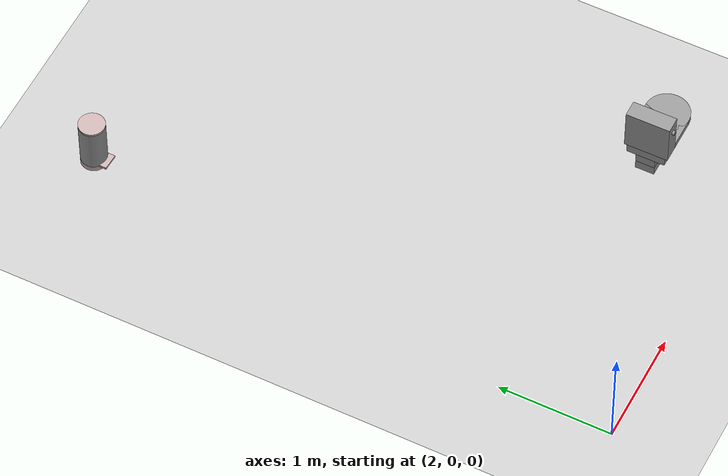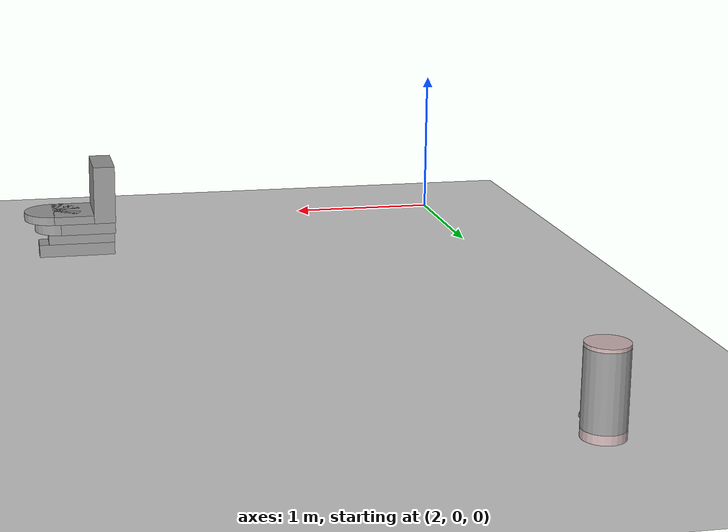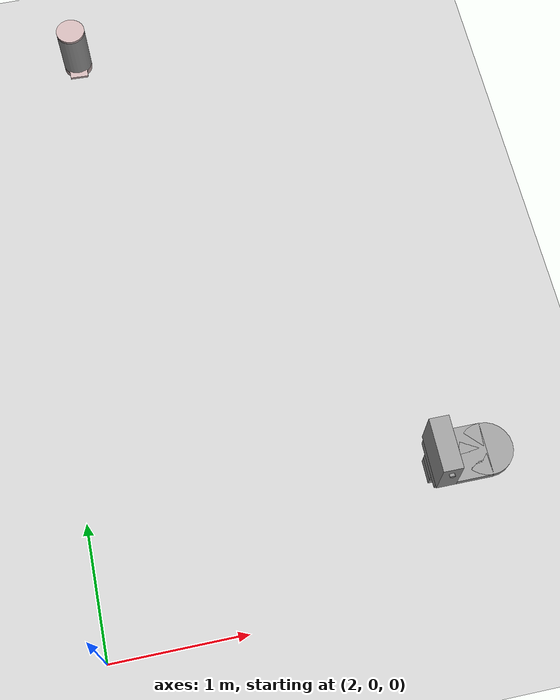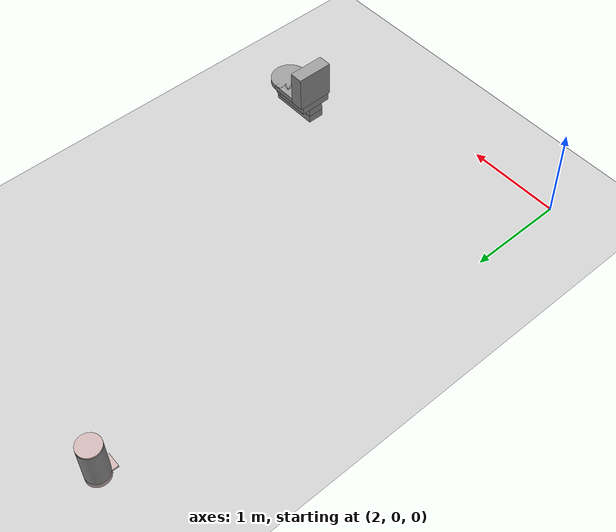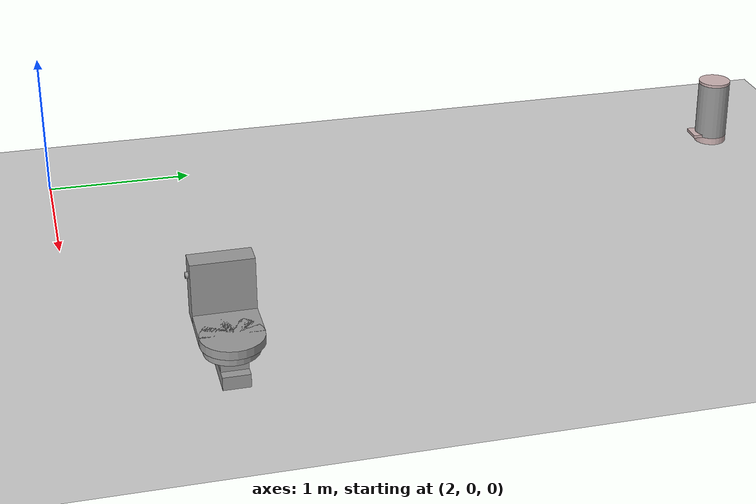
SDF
<sdf version="1.6">
 <world name="default">
  <model name="ground_plane">
   <static>1</static>
   <link name="link">
    <collision name="collision">
     <geometry><plane><normal>0 0 1</normal><size>100 100</size></plane></geometry>
     <surface><friction><ode><mu>100</mu><mu2>50</mu2></ode></friction></surface>
    </collision>
    <visual name="visual">
     <cast_shadows>0</cast_shadows>
     <geometry><plane><normal>0 0 1</normal><size>100 100</size></plane></geometry>
     <material>
      <script><uri>file://media/materials/scripts/gazebo.material</uri><name>Gazebo/Grey</name></script>
     </material>
    </visual>
   </link>
  </model>
  <model name="trashcan">
   <link name="link_0">
    <pose>-0.0312 0 -0.1775 0 -0 0</pose>
    <visual name="visual">
     <geometry><cylinder><radius>0.115</radius><length>0.05</length></cylinder></geometry>
     <material>
      <lighting>1</lighting>
      <script><uri>file://media/materials/scripts/gazebo.material</uri><name>Gazebo/Grey</name></script>
      <ambient>0.3 0.3 0.3 1</ambient>
      <diffuse>0.8 0.7 0.7 1</diffuse>
      <specular>0.01 0.01 0.21 1</specular>
      <emissive>0 0 0 1</emissive>
      <shader type="vertex"><normal_map>__default__</normal_map></shader>
     </material>
    </visual>
    <collision name="collision">
     <geometry><cylinder><radius>0.115</radius><length>0.05</length></cylinder></geometry>
     <surface>
      <friction>
       <ode><mu>1</mu><mu2>1</mu2><fdir1>0 0 0</fdir1><slip1>0</slip1><slip2>0</slip2></ode>
       <torsional>
        <coefficient>1</coefficient>
        <patch_radius>0</patch_radius>
        <surface_radius>0</surface_radius>
        <use_patch_radius>1</use_patch_radius>
        <ode><slip>0</slip></ode>
       </torsional>
      </friction>
      <bounce><restitution_coefficient>0</restitution_coefficient><threshold>1e+06</threshold></bounce>
      <contact>
       <collide_without_contact>0</collide_without_contact>
       <collide_without_contact_bitmask>1</collide_without_contact_bitmask>
       <collide_bitmask>1</collide_bitmask>
       <ode>
        <soft_cfm>0</soft_cfm>
        <soft_erp>0.2</soft_erp>
        <kp>1e+13</kp>
        <kd>1</kd>
        <max_vel>0.01</max_vel>
        <min_depth>0</min_depth>
       </ode>
       <bullet>
        <split_impulse>1</split_impulse>
        <split_impulse_penetration_threshold>-0.01</split_impulse_penetration_threshold>
        <soft_cfm>0</soft_cfm>
        <soft_erp>0.2</soft_erp>
        <kp>1e+13</kp>
        <kd>1</kd>
       </bullet>
      </contact>
     </surface>
    </collision>
    <inertial>
     <inertia><ixx>1</ixx><ixy>0</ixy><ixz>0</ixz><iyy>1</iyy><iyz>0</iyz><izz>1</izz></inertia>
     <mass>1</mass>
    </inertial>
   </link>
   <link name="link_0_clone">
    <pose>-0.0312 0 0.2675 0 -0 0</pose>
    <visual name="visual">
     <geometry><cylinder><radius>0.115</radius><length>0.02</length></cylinder></geometry>
     <material>
      <lighting>1</lighting>
      <script><uri>file://media/materials/scripts/gazebo.material</uri><name>Gazebo/Grey</name></script>
      <ambient>0.3 0.3 0.3 1</ambient>
      <diffuse>0.8 0.7 0.7 1</diffuse>
      <specular>0.01 0.01 0.21 1</specular>
      <emissive>0 0 0 1</emissive>
      <shader type="vertex"><normal_map>__default__</normal_map></shader>
     </material>
    </visual>
    <collision name="collision">
     <geometry><cylinder><radius>0.115</radius><length>0.02</length></cylinder></geometry>
     <surface>
      <friction>
       <ode><mu>1</mu><mu2>1</mu2><fdir1>0 0 0</fdir1><slip1>0</slip1><slip2>0</slip2></ode>
       <torsional>
        <coefficient>1</coefficient>
        <patch_radius>0</patch_radius>
        <surface_radius>0</surface_radius>
        <use_patch_radius>1</use_patch_radius>
        <ode><slip>0</slip></ode>
       </torsional>
      </friction>
      <bounce><restitution_coefficient>0</restitution_coefficient><threshold>1e+06</threshold></bounce>
      <contact>
       <collide_without_contact>0</collide_without_contact>
       <collide_without_contact_bitmask>1</collide_without_contact_bitmask>
       <collide_bitmask>1</collide_bitmask>
       <ode>
        <soft_cfm>0</soft_cfm>
        <soft_erp>0.2</soft_erp>
        <kp>1e+13</kp>
        <kd>1</kd>
        <max_vel>0.01</max_vel>
        <min_depth>0</min_depth>
       </ode>
       <bullet>
        <split_impulse>1</split_impulse>
        <split_impulse_penetration_threshold>-0.01</split_impulse_penetration_threshold>
        <soft_cfm>0</soft_cfm>
        <soft_erp>0.2</soft_erp>
        <kp>1e+13</kp>
        <kd>1</kd>
       </bullet>
      </contact>
     </surface>
    </collision>
    <inertial>
     <inertia><ixx>1</ixx><ixy>0</ixy><ixz>0</ixz><iyy>1</iyy><iyz>0</iyz><izz>1</izz></inertia>
     <mass>1</mass>
    </inertial>
   </link>
   <link name="link_1">
    <pose>-0.0312 0 0.0525 0 -0 0</pose>
    <visual name="visual">
     <geometry><cylinder><radius>0.115</radius><length>0.41</length></cylinder></geometry>
     <material>
      <lighting>1</lighting>
      <script><uri>file://media/materials/scripts/gazebo.material</uri><name>Gazebo/Grey</name></script>
      <ambient>0.3 0.3 0.3 1</ambient>
      <diffuse>0.7 0.7 0.7 1</diffuse>
      <specular>0.01 1 0.01 1</specular>
      <emissive>0 0 0 1</emissive>
      <shader type="vertex"><normal_map>__default__</normal_map></shader>
     </material>
    </visual>
    <collision name="collision">
     <geometry><cylinder><radius>0.115</radius><length>0.41</length></cylinder></geometry>
     <surface>
      <friction>
       <ode><mu>1</mu><mu2>1</mu2><fdir1>0 0 0</fdir1><slip1>0</slip1><slip2>0</slip2></ode>
       <torsional>
        <coefficient>1</coefficient>
        <patch_radius>0</patch_radius>
        <surface_radius>0</surface_radius>
        <use_patch_radius>1</use_patch_radius>
        <ode><slip>0</slip></ode>
       </torsional>
      </friction>
      <bounce><restitution_coefficient>0</restitution_coefficient><threshold>1e+06</threshold></bounce>
      <contact>
       <collide_without_contact>0</collide_without_contact>
       <collide_without_contact_bitmask>1</collide_without_contact_bitmask>
       <collide_bitmask>1</collide_bitmask>
       <ode>
        <soft_cfm>0</soft_cfm>
        <soft_erp>0.2</soft_erp>
        <kp>1e+13</kp>
        <kd>1</kd>
        <max_vel>0.01</max_vel>
        <min_depth>0</min_depth>
       </ode>
       <bullet>
        <split_impulse>1</split_impulse>
        <split_impulse_penetration_threshold>-0.01</split_impulse_penetration_threshold>
        <soft_cfm>0</soft_cfm>
        <soft_erp>0.2</soft_erp>
        <kp>1e+13</kp>
        <kd>1</kd>
       </bullet>
      </contact>
     </surface>
    </collision>
    <inertial>
     <inertia><ixx>1</ixx><ixy>0</ixy><ixz>0</ixz><iyy>1</iyy><iyz>0</iyz><izz>1</izz></inertia>
     <mass>1</mass>
    </inertial>
   </link>
   <link name="link_2">
    <pose>0.093602 0 -0.1425 0 -0 0</pose>
    <visual name="visual">
     <geometry><box><size>0.065 0.145 0.02</size></box></geometry>
     <material>
      <lighting>1</lighting>
      <script><uri>file://media/materials/scripts/gazebo.material</uri><name>Gazebo/Grey</name></script>
      <ambient>0.3 0.3 0.3 1</ambient>
      <diffuse>0.8 0.7 0.7 1</diffuse>
      <specular>0.01 0.01 0.21 1</specular>
      <emissive>0 0 0 1</emissive>
      <shader type="vertex"><normal_map>__default__</normal_map></shader>
     </material>
    </visual>
    <collision name="collision">
     <geometry><box><size>0.065 0.145 0.02</size></box></geometry>
     <surface>
      <friction>
       <ode><mu>1</mu><mu2>1</mu2><fdir1>0 0 0</fdir1><slip1>0</slip1><slip2>0</slip2></ode>
       <torsional>
        <coefficient>1</coefficient>
        <patch_radius>0</patch_radius>
        <surface_radius>0</surface_radius>
        <use_patch_radius>1</use_patch_radius>
        <ode><slip>0</slip></ode>
       </torsional>
      </friction>
      <bounce><restitution_coefficient>0</restitution_coefficient><threshold>1e+06</threshold></bounce>
      <contact>
       <collide_without_contact>0</collide_without_contact>
       <collide_without_contact_bitmask>1</collide_without_contact_bitmask>
       <collide_bitmask>1</collide_bitmask>
       <ode>
        <soft_cfm>0</soft_cfm>
        <soft_erp>0.2</soft_erp>
        <kp>1e+13</kp>
        <kd>1</kd>
        <max_vel>0.01</max_vel>
        <min_depth>0</min_depth>
       </ode>
       <bullet>
        <split_impulse>1</split_impulse>
        <split_impulse_penetration_threshold>-0.01</split_impulse_penetration_threshold>
        <soft_cfm>0</soft_cfm>
        <soft_erp>0.2</soft_erp>
        <kp>1e+13</kp>
        <kd>1</kd>
       </bullet>
      </contact>
     </surface>
    </collision>
    <inertial>
     <inertia><ixx>1</ixx><ixy>0</ixy><ixz>0</ixz><iyy>1</iyy><iyz>0</iyz><izz>1</izz></inertia>
     <mass>1</mass>
    </inertial>
   </link>
   <joint name="link_0_JOINT_0" type="fixed">
    <parent>link_0</parent>
    <child>link_1</child>
    <physics>
     <ode><limit><cfm>0</cfm><erp>0.2</erp></limit><suspension><cfm>0</cfm><erp>0.2</erp></suspension></ode>
    </physics>
   </joint>
   <joint name="link_0_JOINT_2" type="fixed">
    <parent>link_0</parent>
    <child>link_2</child>
    <physics>
     <ode><limit><cfm>0</cfm><erp>0.2</erp></limit><suspension><cfm>0</cfm><erp>0.2</erp></suspension></ode>
    </physics>
   </joint>
   <joint name="link_1_JOINT_1" type="fixed">
    <parent>link_1</parent>
    <child>link_0_clone</child>
    <physics>
     <ode><limit><cfm>0</cfm><erp>0.2</erp></limit><suspension><cfm>0</cfm><erp>0.2</erp></suspension></ode>
    </physics>
   </joint>
   <static>0</static>
   <pose>2.4949 4.90328 0.282519 -4.2e-05 -7e-06 -1.6074</pose>
  </model>
  <model name="toilet_2">
   <link name="link_3">
    <pose>2.86172 0.097134 0.225194 0 -0 0</pose>
    <visual name="visual">
     <geometry><box><size>0.17 0.515 0.085</size></box></geometry>
     <material>
      <lighting>1</lighting>
      <script><uri>file://media/materials/scripts/gazebo.material</uri><name>Gazebo/Grey</name></script>
      <ambient>0.3 0.3 0.3 1</ambient>
      <diffuse>0.7 0.7 0.7 1</diffuse>
      <specular>0.01 1 1 1</specular>
      <emissive>0 0 0 1</emissive>
      <shader type="vertex"><normal_map>__default__</normal_map></shader>
     </material>
    </visual>
    <collision name="collision">
     <geometry><box><size>0.17 0.515 0.085</size></box></geometry>
     <surface>
      <friction>
       <ode><mu>1</mu><mu2>1</mu2><fdir1>0 0 0</fdir1><slip1>0</slip1><slip2>0</slip2></ode>
       <torsional>
        <coefficient>1</coefficient>
        <patch_radius>0</patch_radius>
        <surface_radius>0</surface_radius>
        <use_patch_radius>1</use_patch_radius>
        <ode><slip>0</slip></ode>
       </torsional>
      </friction>
      <bounce><restitution_coefficient>0</restitution_coefficient><threshold>1e+06</threshold></bounce>
      <contact>
       <collide_without_contact>0</collide_without_contact>
       <collide_without_contact_bitmask>1</collide_without_contact_bitmask>
       <collide_bitmask>1</collide_bitmask>
       <ode>
        <soft_cfm>0</soft_cfm>
        <soft_erp>0.2</soft_erp>
        <kp>1e+13</kp>
        <kd>1</kd>
        <max_vel>0.01</max_vel>
        <min_depth>0</min_depth>
       </ode>
       <bullet>
        <split_impulse>1</split_impulse>
        <split_impulse_penetration_threshold>-0.01</split_impulse_penetration_threshold>
        <soft_cfm>0</soft_cfm>
        <soft_erp>0.2</soft_erp>
        <kp>1e+13</kp>
        <kd>1</kd>
       </bullet>
      </contact>
     </surface>
    </collision>
    <inertial>
     <inertia><ixx>1</ixx><ixy>0</ixy><ixz>0</ixz><iyy>1</iyy><iyz>0</iyz><izz>1</izz></inertia>
     <mass>1</mass>
    </inertial>
   </link>
   <link name="link_3_clone">
    <pose>2.86172 0.064634 0.310194 0 -0 0</pose>
    <visual name="visual">
     <geometry><box><size>0.17 0.45 0.085</size></box></geometry>
     <material>
      <lighting>1</lighting>
      <script><uri>file://media/materials/scripts/gazebo.material</uri><name>Gazebo/Grey</name></script>
      <ambient>0.3 0.3 0.3 1</ambient>
      <diffuse>0.7 0.7 0.7 1</diffuse>
      <specular>0.01 1 1 1</specular>
      <emissive>0 0 0 1</emissive>
      <shader type="vertex"><normal_map>__default__</normal_map></shader>
     </material>
    </visual>
    <collision name="collision">
     <geometry><box><size>0.17 0.45 0.085</size></box></geometry>
     <surface>
      <friction>
       <ode><mu>1</mu><mu2>1</mu2><fdir1>0 0 0</fdir1><slip1>0</slip1><slip2>0</slip2></ode>
       <torsional>
        <coefficient>1</coefficient>
        <patch_radius>0</patch_radius>
        <surface_radius>0</surface_radius>
        <use_patch_radius>1</use_patch_radius>
        <ode><slip>0</slip></ode>
       </torsional>
      </friction>
      <bounce><restitution_coefficient>0</restitution_coefficient><threshold>1e+06</threshold></bounce>
      <contact>
       <collide_without_contact>0</collide_without_contact>
       <collide_without_contact_bitmask>1</collide_without_contact_bitmask>
       <collide_bitmask>1</collide_bitmask>
       <ode>
        <soft_cfm>0</soft_cfm>
        <soft_erp>0.2</soft_erp>
        <kp>1e+13</kp>
        <kd>1</kd>
        <max_vel>0.01</max_vel>
        <min_depth>0</min_depth>
       </ode>
       <bullet>
        <split_impulse>1</split_impulse>
        <split_impulse_penetration_threshold>-0.01</split_impulse_penetration_threshold>
        <soft_cfm>0</soft_cfm>
        <soft_erp>0.2</soft_erp>
        <kp>1e+13</kp>
        <kd>1</kd>
       </bullet>
      </contact>
     </surface>
    </collision>
    <inertial>
     <inertia><ixx>1</ixx><ixy>0</ixy><ixz>0</ixz><iyy>1</iyy><iyz>0</iyz><izz>1</izz></inertia>
     <mass>1</mass>
    </inertial>
   </link>
   <link name="link_3_clone_0">
    <pose>2.86172 -0.087866 0.627694 0 -0 0</pose>
    <visual name="visual">
     <geometry><box><size>0.39 0.145 0.39</size></box></geometry>
     <material>
      <lighting>1</lighting>
      <script><uri>file://media/materials/scripts/gazebo.material</uri><name>Gazebo/Grey</name></script>
      <ambient>0.3 0.3 0.3 1</ambient>
      <diffuse>0.7 0.7 0.7 1</diffuse>
      <specular>0.01 1 1 1</specular>
      <emissive>0 0 0 1</emissive>
      <shader type="vertex"><normal_map>__default__</normal_map></shader>
     </material>
    </visual>
    <collision name="collision">
     <geometry><box><size>0.39 0.145 0.39</size></box></geometry>
     <surface>
      <friction>
       <ode><mu>1</mu><mu2>1</mu2><fdir1>0 0 0</fdir1><slip1>0</slip1><slip2>0</slip2></ode>
       <torsional>
        <coefficient>1</coefficient>
        <patch_radius>0</patch_radius>
        <surface_radius>0</surface_radius>
        <use_patch_radius>1</use_patch_radius>
        <ode><slip>0</slip></ode>
       </torsional>
      </friction>
      <bounce><restitution_coefficient>0</restitution_coefficient><threshold>1e+06</threshold></bounce>
      <contact>
       <collide_without_contact>0</collide_without_contact>
       <collide_without_contact_bitmask>1</collide_without_contact_bitmask>
       <collide_bitmask>1</collide_bitmask>
       <ode>
        <soft_cfm>0</soft_cfm>
        <soft_erp>0.2</soft_erp>
        <kp>1e+13</kp>
        <kd>1</kd>
        <max_vel>0.01</max_vel>
        <min_depth>0</min_depth>
       </ode>
       <bullet>
        <split_impulse>1</split_impulse>
        <split_impulse_penetration_threshold>-0.01</split_impulse_penetration_threshold>
        <soft_cfm>0</soft_cfm>
        <soft_erp>0.2</soft_erp>
        <kp>1e+13</kp>
        <kd>1</kd>
       </bullet>
      </contact>
     </surface>
    </collision>
    <inertial>
     <inertia><ixx>1</ixx><ixy>0</ixy><ixz>0</ixz><iyy>1</iyy><iyz>0</iyz><izz>1</izz></inertia>
     <mass>1</mass>
    </inertial>
   </link>
   <link name="link_4">
    <pose>2.86172 0.024634 0.392694 0 -0 0</pose>
    <visual name="visual">
     <geometry><box><size>0.34 0.37 0.08</size></box></geometry>
     <material>
      <lighting>1</lighting>
      <script><uri>file://media/materials/scripts/gazebo.material</uri><name>Gazebo/Grey</name></script>
      <ambient>0.3 0.3 0.3 1</ambient>
      <diffuse>0.7 0.7 0.7 1</diffuse>
      <specular>0.01 1 1 1</specular>
      <emissive>0 0 0 1</emissive>
      <shader type="vertex"><normal_map>__default__</normal_map></shader>
     </material>
    </visual>
    <collision name="collision">
     <geometry><box><size>0.34 0.37 0.08</size></box></geometry>
     <surface>
      <friction>
       <ode><mu>1</mu><mu2>1</mu2><fdir1>0 0 0</fdir1><slip1>0</slip1><slip2>0</slip2></ode>
       <torsional>
        <coefficient>1</coefficient>
        <patch_radius>0</patch_radius>
        <surface_radius>0</surface_radius>
        <use_patch_radius>1</use_patch_radius>
        <ode><slip>0</slip></ode>
       </torsional>
      </friction>
      <bounce><restitution_coefficient>0</restitution_coefficient><threshold>1e+06</threshold></bounce>
      <contact>
       <collide_without_contact>0</collide_without_contact>
       <collide_without_contact_bitmask>1</collide_without_contact_bitmask>
       <collide_bitmask>1</collide_bitmask>
       <ode>
        <soft_cfm>0</soft_cfm>
        <soft_erp>0.2</soft_erp>
        <kp>1e+13</kp>
        <kd>1</kd>
        <max_vel>0.01</max_vel>
        <min_depth>0</min_depth>
       </ode>
       <bullet>
        <split_impulse>1</split_impulse>
        <split_impulse_penetration_threshold>-0.01</split_impulse_penetration_threshold>
        <soft_cfm>0</soft_cfm>
        <soft_erp>0.2</soft_erp>
        <kp>1e+13</kp>
        <kd>1</kd>
       </bullet>
      </contact>
     </surface>
    </collision>
    <inertial>
     <inertia><ixx>1</ixx><ixy>0</ixy><ixz>0</ixz><iyy>1</iyy><iyz>0</iyz><izz>1</izz></inertia>
     <mass>1</mass>
    </inertial>
   </link>
   <link name="link_6">
    <pose>2.86172 0.209635 0.392694 0 -0 0</pose>
    <visual name="visual">
     <geometry><cylinder><radius>0.17</radius><length>0.08</length></cylinder></geometry>
     <material>
      <lighting>1</lighting>
      <script><uri>file://media/materials/scripts/gazebo.material</uri><name>Gazebo/Grey</name></script>
      <ambient>0.3 0.3 0.3 1</ambient>
      <diffuse>0.7 0.7 0.7 1</diffuse>
      <specular>0.01 1 1 1</specular>
      <emissive>0 0 0 1</emissive>
      <shader type="vertex"><normal_map>__default__</normal_map></shader>
     </material>
    </visual>
    <collision name="collision">
     <geometry><cylinder><radius>0.17</radius><length>0.08</length></cylinder></geometry>
     <surface>
      <friction>
       <ode><mu>1</mu><mu2>1</mu2><fdir1>0 0 0</fdir1><slip1>0</slip1><slip2>0</slip2></ode>
       <torsional>
        <coefficient>1</coefficient>
        <patch_radius>0</patch_radius>
        <surface_radius>0</surface_radius>
        <use_patch_radius>1</use_patch_radius>
        <ode><slip>0</slip></ode>
       </torsional>
      </friction>
      <bounce><restitution_coefficient>0</restitution_coefficient><threshold>1e+06</threshold></bounce>
      <contact>
       <collide_without_contact>0</collide_without_contact>
       <collide_without_contact_bitmask>1</collide_without_contact_bitmask>
       <collide_bitmask>1</collide_bitmask>
       <ode>
        <soft_cfm>0</soft_cfm>
        <soft_erp>0.2</soft_erp>
        <kp>1e+13</kp>
        <kd>1</kd>
        <max_vel>0.01</max_vel>
        <min_depth>0</min_depth>
       </ode>
       <bullet>
        <split_impulse>1</split_impulse>
        <split_impulse_penetration_threshold>-0.01</split_impulse_penetration_threshold>
        <soft_cfm>0</soft_cfm>
        <soft_erp>0.2</soft_erp>
        <kp>1e+13</kp>
        <kd>1</kd>
       </bullet>
      </contact>
     </surface>
    </collision>
    <inertial>
     <inertia><ixx>1</ixx><ixy>0</ixy><ixz>0</ixz><iyy>1</iyy><iyz>0</iyz><izz>1</izz></inertia>
     <mass>1</mass>
    </inertial>
   </link>
   <link name="link_7">
    <pose>2.86172 0.119634 0.460194 0 -0 0</pose>
    <visual name="visual">
     <geometry><box><size>0.39 0.27 0.055</size></box></geometry>
     <material>
      <lighting>1</lighting>
      <script><uri>file://media/materials/scripts/gazebo.material</uri><name>Gazebo/Grey</name></script>
      <ambient>0.3 0.3 0.3 1</ambient>
      <diffuse>0.7 0.7 0.7 1</diffuse>
      <specular>0.01 1 1 1</specular>
      <emissive>0 0 0 1</emissive>
      <shader type="vertex"><normal_map>__default__</normal_map></shader>
     </material>
    </visual>
    <collision name="collision">
     <geometry><box><size>0.39 0.27 0.055</size></box></geometry>
     <surface>
      <friction>
       <ode><mu>1</mu><mu2>1</mu2><fdir1>0 0 0</fdir1><slip1>0</slip1><slip2>0</slip2></ode>
       <torsional>
        <coefficient>1</coefficient>
        <patch_radius>0</patch_radius>
        <surface_radius>0</surface_radius>
        <use_patch_radius>1</use_patch_radius>
        <ode><slip>0</slip></ode>
       </torsional>
      </friction>
      <bounce><restitution_coefficient>0</restitution_coefficient><threshold>1e+06</threshold></bounce>
      <contact>
       <collide_without_contact>0</collide_without_contact>
       <collide_without_contact_bitmask>1</collide_without_contact_bitmask>
       <collide_bitmask>1</collide_bitmask>
       <ode>
        <soft_cfm>0</soft_cfm>
        <soft_erp>0.2</soft_erp>
        <kp>1e+13</kp>
        <kd>1</kd>
        <max_vel>0.01</max_vel>
        <min_depth>0</min_depth>
       </ode>
       <bullet>
        <split_impulse>1</split_impulse>
        <split_impulse_penetration_threshold>-0.01</split_impulse_penetration_threshold>
        <soft_cfm>0</soft_cfm>
        <soft_erp>0.2</soft_erp>
        <kp>1e+13</kp>
        <kd>1</kd>
       </bullet>
      </contact>
     </surface>
    </collision>
    <inertial>
     <inertia><ixx>1</ixx><ixy>0</ixy><ixz>0</ixz><iyy>1</iyy><iyz>0</iyz><izz>1</izz></inertia>
     <mass>1</mass>
    </inertial>
   </link>
   <link name="link_8">
    <pose>2.86172 0.254634 0.460194 0 -0 0</pose>
    <visual name="visual">
     <geometry><cylinder><radius>0.195</radius><length>0.055</length></cylinder></geometry>
     <material>
      <lighting>1</lighting>
      <script><uri>file://media/materials/scripts/gazebo.material</uri><name>Gazebo/Grey</name></script>
      <ambient>0.3 0.3 0.3 1</ambient>
      <diffuse>0.7 0.7 0.7 1</diffuse>
      <specular>0.01 1 1 1</specular>
      <emissive>0 0 0 1</emissive>
      <shader type="vertex"><normal_map>__default__</normal_map></shader>
     </material>
    </visual>
    <collision name="collision">
     <geometry><cylinder><radius>0.195</radius><length>0.055</length></cylinder></geometry>
     <surface>
      <friction>
       <ode><mu>1</mu><mu2>1</mu2><fdir1>0 0 0</fdir1><slip1>0</slip1><slip2>0</slip2></ode>
       <torsional>
        <coefficient>1</coefficient>
        <patch_radius>0</patch_radius>
        <surface_radius>0</surface_radius>
        <use_patch_radius>1</use_patch_radius>
        <ode><slip>0</slip></ode>
       </torsional>
      </friction>
      <bounce><restitution_coefficient>0</restitution_coefficient><threshold>1e+06</threshold></bounce>
      <contact>
       <collide_without_contact>0</collide_without_contact>
       <collide_without_contact_bitmask>1</collide_without_contact_bitmask>
       <collide_bitmask>1</collide_bitmask>
       <ode>
        <soft_cfm>0</soft_cfm>
        <soft_erp>0.2</soft_erp>
        <kp>1e+13</kp>
        <kd>1</kd>
        <max_vel>0.01</max_vel>
        <min_depth>0</min_depth>
       </ode>
       <bullet>
        <split_impulse>1</split_impulse>
        <split_impulse_penetration_threshold>-0.01</split_impulse_penetration_threshold>
        <soft_cfm>0</soft_cfm>
        <soft_erp>0.2</soft_erp>
        <kp>1e+13</kp>
        <kd>1</kd>
       </bullet>
      </contact>
     </surface>
    </collision>
    <inertial>
     <inertia><ixx>1</ixx><ixy>0</ixy><ixz>0</ixz><iyy>1</iyy><iyz>0</iyz><izz>1</izz></inertia>
     <mass>1</mass>
    </inertial>
   </link>
   <link name="link_9">
    <pose>3.06673 -0.087866 0.72514 0 1.5707 0</pose>
    <visual name="visual">
     <geometry><cylinder><radius>0.02</radius><length>0.02</length></cylinder></geometry>
     <material>
      <lighting>1</lighting>
      <script><uri>file://media/materials/scripts/gazebo.material</uri><name>Gazebo/Grey</name></script>
      <ambient>0.3 0.3 0.3 1</ambient>
      <diffuse>0.7 0.7 0.7 1</diffuse>
      <specular>0.01 0.01 0.01 1</specular>
      <emissive>0 0 0 1</emissive>
      <shader type="vertex"><normal_map>__default__</normal_map></shader>
     </material>
    </visual>
    <collision name="collision">
     <geometry><cylinder><radius>0.02</radius><length>0.02</length></cylinder></geometry>
     <surface>
      <friction>
       <ode><mu>1</mu><mu2>1</mu2><fdir1>0 0 0</fdir1><slip1>0</slip1><slip2>0</slip2></ode>
       <torsional>
        <coefficient>1</coefficient>
        <patch_radius>0</patch_radius>
        <surface_radius>0</surface_radius>
        <use_patch_radius>1</use_patch_radius>
        <ode><slip>0</slip></ode>
       </torsional>
      </friction>
      <bounce><restitution_coefficient>0</restitution_coefficient><threshold>1e+06</threshold></bounce>
      <contact>
       <collide_without_contact>0</collide_without_contact>
       <collide_without_contact_bitmask>1</collide_without_contact_bitmask>
       <collide_bitmask>1</collide_bitmask>
       <ode>
        <soft_cfm>0</soft_cfm>
        <soft_erp>0.2</soft_erp>
        <kp>1e+13</kp>
        <kd>1</kd>
        <max_vel>0.01</max_vel>
        <min_depth>0</min_depth>
       </ode>
       <bullet>
        <split_impulse>1</split_impulse>
        <split_impulse_penetration_threshold>-0.01</split_impulse_penetration_threshold>
        <soft_cfm>0</soft_cfm>
        <soft_erp>0.2</soft_erp>
        <kp>1e+13</kp>
        <kd>1</kd>
       </bullet>
      </contact>
     </surface>
    </collision>
    <inertial>
     <inertia><ixx>1</ixx><ixy>0</ixy><ixz>0</ixz><iyy>1</iyy><iyz>0</iyz><izz>1</izz></inertia>
     <mass>1</mass>
    </inertial>
   </link>
   <joint name="link_3_clone_0_JOINT_11" type="fixed">
    <parent>link_3_clone_0</parent>
    <child>link_7</child>
    <physics>
     <ode><limit><cfm>0</cfm><erp>0.2</erp></limit><suspension><cfm>0</cfm><erp>0.2</erp></suspension></ode>
    </physics>
   </joint>
   <joint name="link_3_clone_0_JOINT_15" type="fixed">
    <parent>link_3_clone_0</parent>
    <child>link_9</child>
    <physics>
     <ode><limit><cfm>0</cfm><erp>0.2</erp></limit><suspension><cfm>0</cfm><erp>0.2</erp></suspension></ode>
    </physics>
   </joint>
   <joint name="link_3_clone_JOINT_14" type="fixed">
    <parent>link_3_clone</parent>
    <child>link_3</child>
    <physics>
     <ode><limit><cfm>0</cfm><erp>0.2</erp></limit><suspension><cfm>0</cfm><erp>0.2</erp></suspension></ode>
    </physics>
   </joint>
   <joint name="link_4_JOINT_10" type="fixed">
    <parent>link_4</parent>
    <child>link_3_clone_0</child>
    <physics>
     <ode><limit><cfm>0</cfm><erp>0.2</erp></limit><suspension><cfm>0</cfm><erp>0.2</erp></suspension></ode>
    </physics>
   </joint>
   <joint name="link_4_JOINT_13" type="fixed">
    <parent>link_4</parent>
    <child>link_3_clone</child>
    <physics>
     <ode><limit><cfm>0</cfm><erp>0.2</erp></limit><suspension><cfm>0</cfm><erp>0.2</erp></suspension></ode>
    </physics>
   </joint>
   <joint name="link_4_JOINT_9" type="fixed">
    <parent>link_4</parent>
    <child>link_6</child>
    <physics>
     <ode><limit><cfm>0</cfm><erp>0.2</erp></limit><suspension><cfm>0</cfm><erp>0.2</erp></suspension></ode>
    </physics>
   </joint>
   <joint name="link_7_JOINT_12" type="fixed">
    <parent>link_7</parent>
    <child>link_8</child>
    <physics>
     <ode><limit><cfm>0</cfm><erp>0.2</erp></limit><suspension><cfm>0</cfm><erp>0.2</erp></suspension></ode>
    </physics>
   </joint>
   <static>0</static>
   <pose>4.64185 3.74076 -0.182667 -3e-06 1e-05 -1.56916</pose>
  </model>
 </world>
</sdf>
